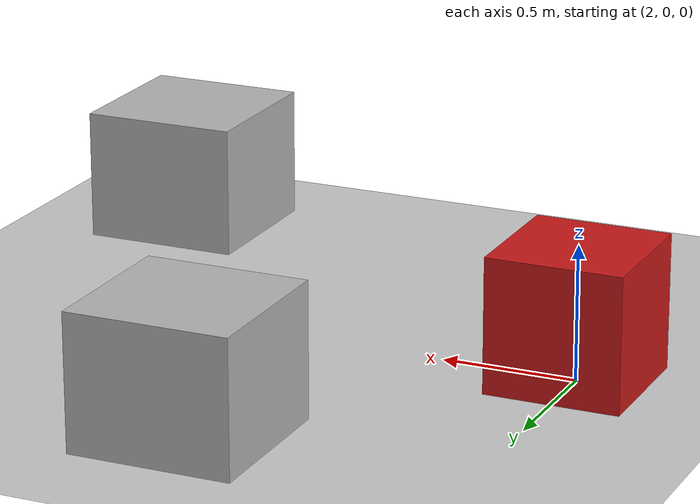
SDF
<?xml version="1.0"?>
<sdf version="1.8">
  <world name="leo_empty">
    <physics name="1ms" type="ignored">
      <max_step_size>0.001</max_step_size>
      <real_time_factor>1.0</real_time_factor>
    </physics>

    <plugin
      filename="ignition-gazebo-physics-system"
      name="ignition::gazebo::systems::Physics">
    </plugin>
    <plugin
      filename="ignition-gazebo-sensors-system"
      name="ignition::gazebo::systems::Sensors">
      <render_engine>ogre2</render_engine>
    </plugin>
    <plugin
      filename="ignition-gazebo-scene-broadcaster-system"
      name="ignition::gazebo::systems::SceneBroadcaster">
    </plugin>
    <plugin
      filename="ignition-gazebo-user-commands-system"
      name="ignition::gazebo::systems::UserCommands">
    </plugin>
    <plugin filename="gz-sim-imu-system"
      name="gz::sim::systems::Imu">
    </plugin>

    <light name="sun" type="directional">
      <cast_shadows>true</cast_shadows>
      <pose>0 0 10 0 0 0</pose>
      <diffuse>0.8 0.8 0.8 1</diffuse>
      <specular>0.2 0.2 0.2 1</specular>
      <attenuation>
        <range>1000</range>
        <constant>0.9</constant>
        <linear>0.01</linear>
        <quadratic>0.001</quadratic>
      </attenuation>
      <direction>-0.5 0.1 -0.9</direction>
    </light>

    <model name="ground_plane">
      <static>true</static>
      <link name="link">
        <collision name="collision">
          <geometry>
            <plane>
              <normal>0 0 1</normal>
              <size>100 100</size>
            </plane>
          </geometry>
          <surface>
            <friction>
              <ode>
                <mu>50</mu>
              </ode>
              <bullet>
                <friction>1</friction>
                <friction2>1</friction2>
                <rolling_friction>0.1</rolling_friction>
              </bullet>
            </friction>
          </surface>
        </collision>
        <visual name="visual">
          <geometry>
            <plane>
              <normal>0 0 1</normal>
              <size>100 100</size>
            </plane>
          </geometry>
          <material>
            <ambient>0.8 0.8 0.8 1</ambient>
            <diffuse>0.8 0.8 0.8 1</diffuse>
            <specular>0.8 0.8 0.8 1</specular>
          </material>
        </visual>
      </link>
    </model>
      <!-- Test obstacle boxes for LiDAR obstacle avoidance -->

    <model name="box_front_1">
      <pose>2.0 0 0.25 0 0 0</pose>
      <static>true</static>
      <link name="link">
        <collision name="collision">
          <geometry>
            <box>
              <size>0.5 0.5 0.5</size>
            </box>
          </geometry>
        </collision>
        <visual name="visual">
          <geometry>
            <box>
              <size>0.5 0.5 0.5</size>
            </box>
          </geometry>
          <material>
            <ambient>0.8 0.1 0.1 1</ambient>
            <diffuse>0.8 0.1 0.1 1</diffuse>
          </material>
        </visual>
      </link>
    </model>

    <model name="box_left_1">
      <pose>3.0 1.0 0.25 0 0 0</pose>
      <static>true</static>
      <link name="link">
        <collision name="collision">
          <geometry>
            <box>
              <size>0.6 0.6 0.5</size>
            </box>
          </geometry>
        </collision>
        <visual name="visual">
          <geometry>
            <box>
              <size>0.6 0.6 0.5</size>
            </box>
          </geometry>
        </visual>
      </link>
    </model>

    <model name="box_right_1">
      <pose>4.0 -1.0 0.25 0 0 0</pose>
      <static>true</static>
      <link name="link">
        <collision name="collision">
          <geometry>
            <box>
              <size>0.6 0.6 0.5</size>
            </box>
          </geometry>
        </collision>
        <visual name="visual">
          <geometry>
            <box>
              <size>0.6 0.6 0.5</size>
            </box>
          </geometry>
        </visual>
      </link>
    </model>
  </world>
</sdf>
